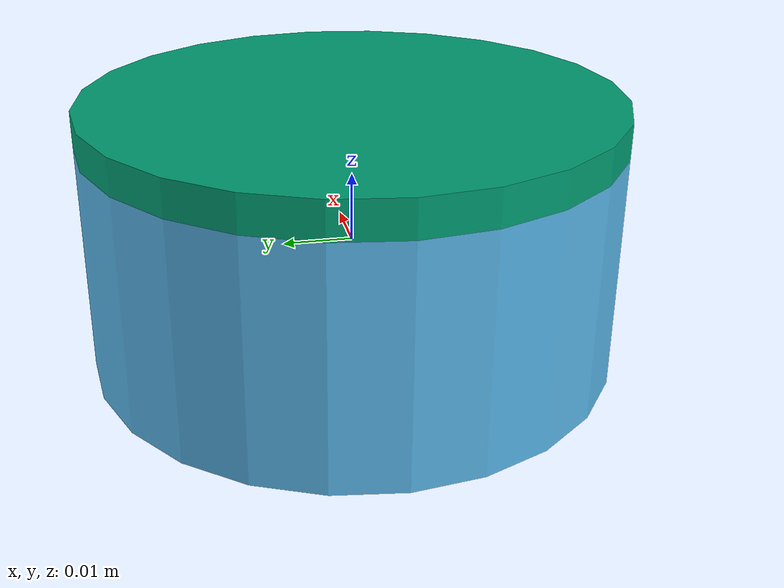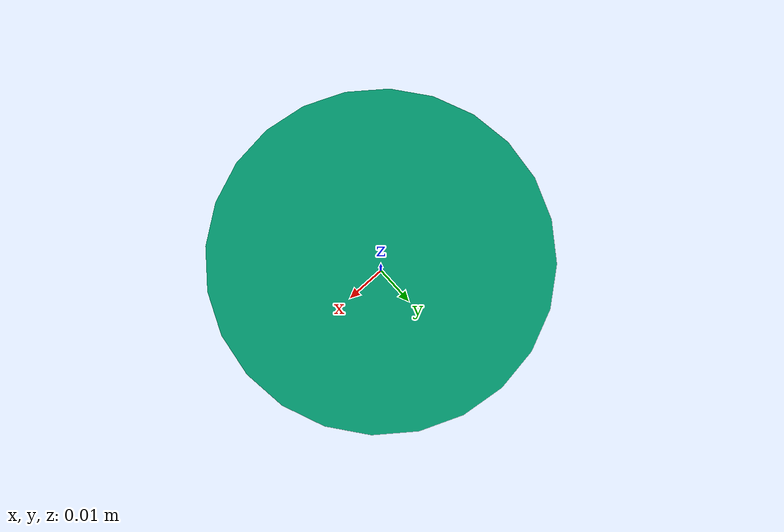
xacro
<?xml version="1.0"?>
<robot xmlns:xacro="http://ros.org/wiki/xacro" name="nano17_example">

	<!-- Include the force-torque-sensor model -->
	<xacro:include filename="$(find force_torque_sensor)/model/ft_sensor.urdf.xacro"/>

	<link name="world"/>

	<xacro:ft_sensor parent="world" name="my_sensor" type="ati_gamma">
		<origin xyz="0 0 0" rpy="0 0 0"/>
	</xacro:ft_sensor>

</robot>

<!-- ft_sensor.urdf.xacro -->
<robot xmlns:xacro="http://www.ros.org/wiki/xacro" name="ft_sensor">

	<!-- Include all available models -->
	<xacro:include filename="$(find force_torque_sensor)/model/models.urdf.xacro"/>
    <xacro:include filename="$(find force_torque_sensor)/model/ft_sensor.gazebo.xacro"/>

	<!-- Base model for all sensor to have common frame names -->
	<xacro:macro name="ft_sensor" params="parent name type *origin">

		<joint name="${parent}_${name}_base_joint" type="fixed">
			<insert_block name="origin"/>
			<parent link="${parent}"/>
			<child link="${name}_${type}_base"/>
		</joint>

		<link name="${name}_${type}_base">
			<insert_block name="ati_gamma"/>
		</link>

	    <link name="${name}_${type}_measure">
			<insert_block name="ati_gamma_platform"/>
		</link>

		<joint name="${parent}_${name}_measure_joint" type="fixed">
		    <origin xyz="0 0 0.0165" rpy="0 0 0"/>
			<parent link="${name}_${type}_base"/>
			<child link="${name}_${type}_measure"/>
		</joint>

        <xacro:ft_sensor_gazebo name="${name}" parent="${parent}" type="${type}"/>

	</xacro:macro>

</robot>

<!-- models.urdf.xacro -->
<robot xmlns:xacro="http://ros.org/wiki/xacro">

	<!-- Common tools: PI, inertias of a cuboid and cylinder -->
	<xacro:property name="M_PI" value="3.1415926535897931"/>
	<xacro:macro name="cuboid_inertia_def" params="width height length mass">
	<inertia ixx="${mass * (height * height + length * length) / 12}"
			 iyy="${mass * (width * width + length * length) / 12}"
			 izz="${mass * (width * width + height * height) / 12}"
			 ixy="0" iyz="0" ixz="0"/>
	</xacro:macro>
	<xacro:macro name="cylinder_inertia_def" params="radius length mass">
	<inertia ixx="${mass * (3 * radius * radius + length * length) / 12}"
			 iyy="${mass * radius* radius / 2}"
			 izz="${mass * (3 * radius * radius + length * length) / 12}"
			 ixy="0" iyz="0" ixz="0"/>
	</xacro:macro>

	<!-- Sensor models -->

	<!-- Nano17: http://www.ati-ia.com/products/ft/ft_models.aspx?id=Nano17 -->
	<xacro:property name="nano17">
			<inertial>
				<mass value="0.00907"/>
				<origin xyz="0 0 0.00725"  />
				<xacro:cylinder_inertia_def radius="0.085" length="0.0145" mass="0.00907"/>
			</inertial>
			<visual>
				<!-- origin xyz="0 0 0.00725" rpy="0 0 0"/ -->
				<origin xyz="0 0 0" rpy="0 0 0"/>
				<geometry>
					<!-- cylinder radius="0.0085" length="0.0145"/ -->
					<mesh filename="package://force_torque_sensor/model/meshes/nano17.stl"/>
				</geometry>
			</visual>
			<collision>
				<origin xyz="0 0 0.00725" rpy="0 0 0"/>
				<geometry>
					<cylinder radius="0.0085" length="0.0145"/>
				</geometry>
			</collision>
	</xacro:property>
	<xacro:property name="nano17_platform">
			<inertial>
				<mass value="0.002"/>
				<origin xyz="0 0 0.0025"  />
				<xacro:cylinder_inertia_def radius="0.085" length="0.005" mass="0.002"/>
			</inertial>
			<visual>
				<!-- origin xyz="0 0 0.00725" rpy="0 0 0"/ -->
				<origin xyz="0 0 0.0025" rpy="0 0 0"/>
				<geometry>
					<cylinder radius="0.0085" length="0.005"/>
				</geometry>
			</visual>
			<collision>
				<origin xyz="0 0 0.0025" rpy="0 0 0"/>
				<geometry>
					<cylinder radius="0.0085" length="0.005"/>
				</geometry>
			</collision>
	</xacro:property>
	<xacro:property name="nano17_measure_frame">
		<origin xyz="0 0 0.0145" rpy="0 0 0"/>
	</xacro:property>

	<xacro:property name="ati_gamma_platform">
			<inertial>
				<mass value="0.002"/>
				<origin xyz="0 0 0.0025"  />
				<xacro:cylinder_inertia_def radius="0.0377" length="0.005" mass="0.002"/>
			</inertial>
			<visual>
				<!-- origin xyz="0 0 0.00725" rpy="0 0 0"/ -->
				<origin xyz="0 0 0.0025" rpy="0 0 0"/>
				<geometry>
					<cylinder radius="0.0377" length="0.005"/>
				</geometry>
			</visual>
			<collision>
				<origin xyz="0 0 0.0025" rpy="0 0 0"/>
				<geometry>
					<cylinder radius="0.0377" length="0.005"/>
				</geometry>
			</collision>
	</xacro:property>

	<xacro:property name="ati_gamma_measure_frame">
		<origin xyz="0 0 0.0165" rpy="0 0 0"/>
	</xacro:property>

	<xacro:property name="ati_gamma">
			<inertial>
				<mass value="0.255"/>
				<origin xyz="0 0 0.0165"  />
				<xacro:cylinder_inertia_def radius="0.0377" length="0.033" mass="0.255"/>
			</inertial>
			<visual>
				<!-- origin xyz="0 0 0.00725" rpy="0 0 0"/ -->
				<origin xyz="0 0 0" rpy="0 0 0"/>
				<geometry>
					<cylinder radius="0.0377" length="0.033"/>
					<!--mesh filename="package://force_torque_sensor/model/meshes/ati_gamma.stl"/-->
				</geometry>
			</visual>
			<collision>
				<origin xyz="0 0 0.0165" rpy="0 0 0"/>
				<geometry>
					<cylinder radius="0.0377" length="0.033"/>
				</geometry>
			</collision>
	</xacro:property>

</robot>
